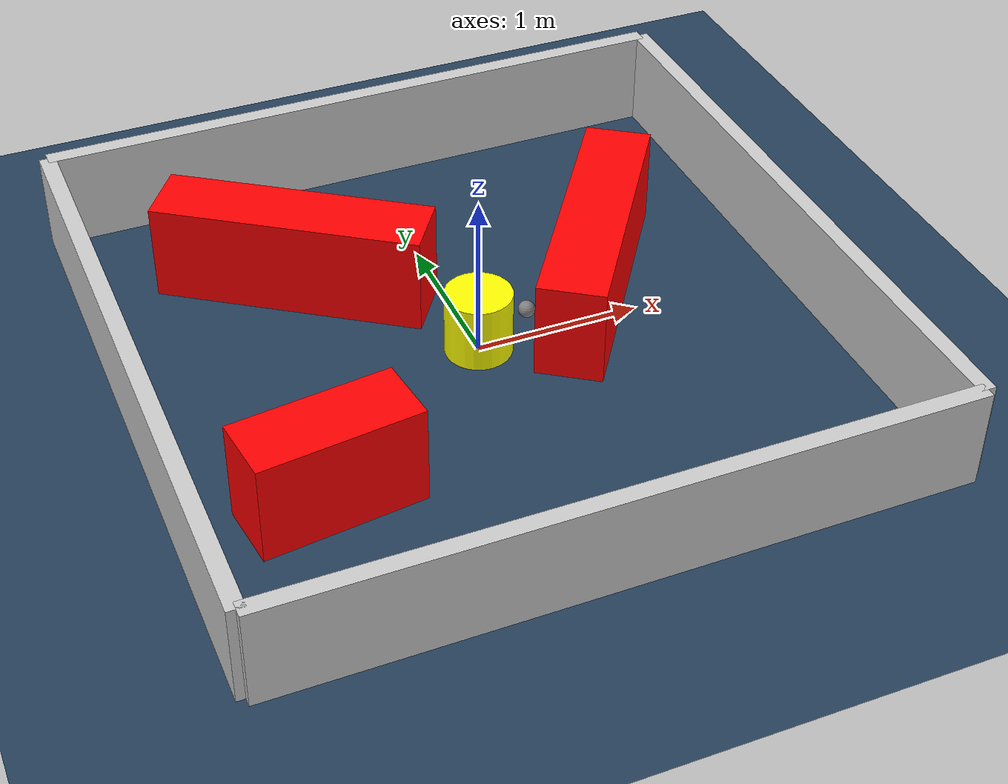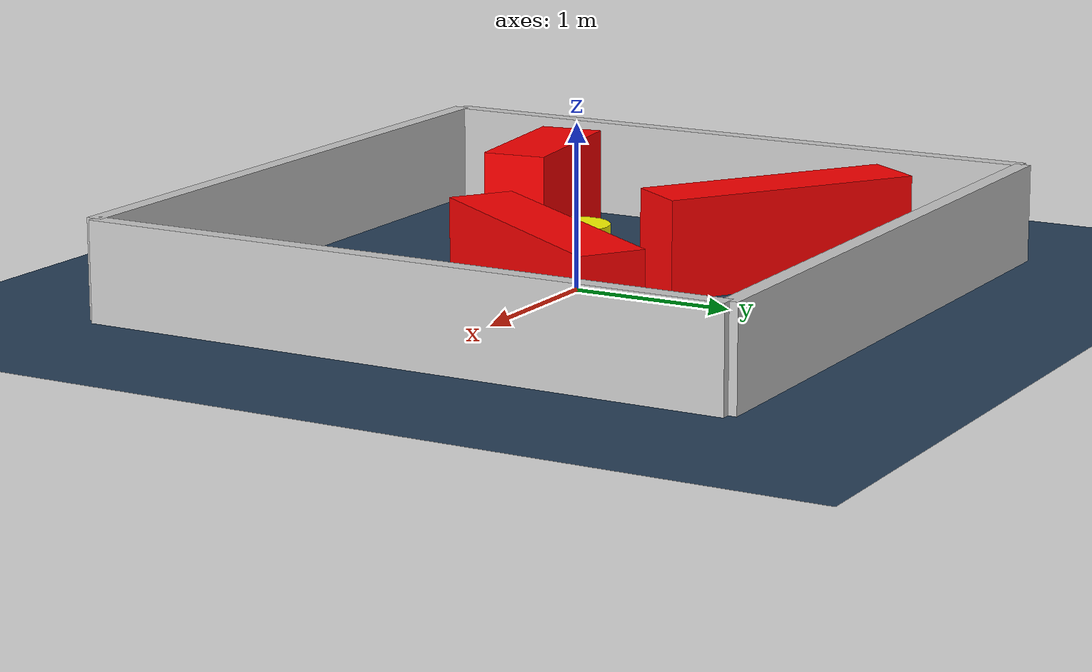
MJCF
<?xml version="1.0" ?>
<mujoco model="generated_environment">
  <option timestep="0.01" integrator="RK4" cone="elliptic"/>
  <default>
    <geom density="1"/>
  </default>
  <asset>
    <texture builtin="gradient" height="3072" rgb1="0.3 0.5 0.7" rgb2="0 0 0" type="skybox" width="512"/>
    <texture builtin="checker" height="300" mark="edge" markrgb="0.8 0.8 0.8" name="groundplane" rgb1="0.2 0.3 0.4" rgb2="0.1 0.2 0.3" type="2d" width="300"/>
    <material name="groundplane" reflectance="0.2" texrepeat="5 5" texture="groundplane" texuniform="true"/>
    <material name="robot" rgba="0.0 1.0 0.0 1"/>
  </asset>
  <worldbody>
    <light dir="0 0 -1" directional="true" pos="0 0 1.5"/>
    <geom condim="4" friction="1.0 0.005 0.001" material="groundplane" name="floor" size="0 0 0.05" type="plane"/>
    <body name="walls">
      <geom name="wall_1" condim="4" pos="-2.0 0.0 0.3" rgba="0.800000011920929 0.800000011920929 0.800000011920929 1.0" size="0.05 2.0 0.3" type="box"/>
      <geom name="wall_2" condim="4" pos="2.0 0.0 0.3" rgba="0.800000011920929 0.800000011920929 0.800000011920929 1.0" size="0.05 2.0 0.3" type="box"/>
      <geom name="wall_3" condim="4" pos="0.0 -2.0 0.3" rgba="0.800000011920929 0.800000011920929 0.800000011920929 1.0" size="2.0 0.05 0.3" type="box"/>
      <geom name="wall_4" condim="4" pos="0.0 2.0 0.3" rgba="0.800000011920929 0.800000011920929 0.800000011920929 1.0" size="2.0 0.05 0.3" type="box"/>
    </body>
    <body name="robot">
      <joint name="joint_x" type="slide" pos="0 0 0" axis="1 0 0"/>
      <joint name="joint_y" type="slide" pos="0 0 0" axis="0 1 0"/>
      <geom name="robot" type="sphere" pos="0.3 0.0 0.2" size="0.05" mass="5." friction="1.0 0.005 0.0001" condim="4" rgba="0.5 0.5 0.5 1.0"/>
      <site name="sensor_ball"/>
    </body>
    <body name="obstacle_movable_1">
      <geom name="obstacle_movable_1" condim="4" pos="0.0 0.0 0.2" euler="0 0 0.0" friction="1.0 0.005 0.001" rgba="1.0 1.0 0.0 1.0" size="0.2 0.2 0.0" type="cylinder" mass="0.1"/>
      <joint type="free"/>
    </body>
    <body name="obstacle_2_static">
      <geom name="obstacle_2_static" condim="4" pos="-1.2119393100501803 -0.9208174264454578 0.3" euler="0 0 187.05228394735718" friction="1.0 0.005 0.001" rgba="1 0 0 1" size="0.47515259047218716 0.2 0.3" type="box"/>
    </body>
    <body name="obstacle_3_static">
      <geom name="obstacle_3_static" condim="4" pos="-0.795233419338734 0.9217268094647546 0.3" euler="0 0 325.29011533800656" friction="1.0 0.005 0.001" rgba="1 0 0 1" size="0.8120681119728808 0.2 0.3" type="box"/>
    </body>
    <body name="obstacle_4_static">
      <geom name="obstacle_4_static" condim="4" pos="0.8531165197770914 0.2652522483653639 0.3" euler="0 0 55.40309152045714" friction="1.0 0.005 0.001" rgba="1 0 0 1" size="0.8516241505595759 0.2 0.3" type="box"/>
    </body>
  </worldbody>
  <actuator>
    <motor name="actuator_x" joint="joint_x" gear="1" ctrlrange="-1 1"/>
    <motor name="actuator_y" joint="joint_y" gear="1" ctrlrange="-1 1"/>
  </actuator>
</mujoco>
